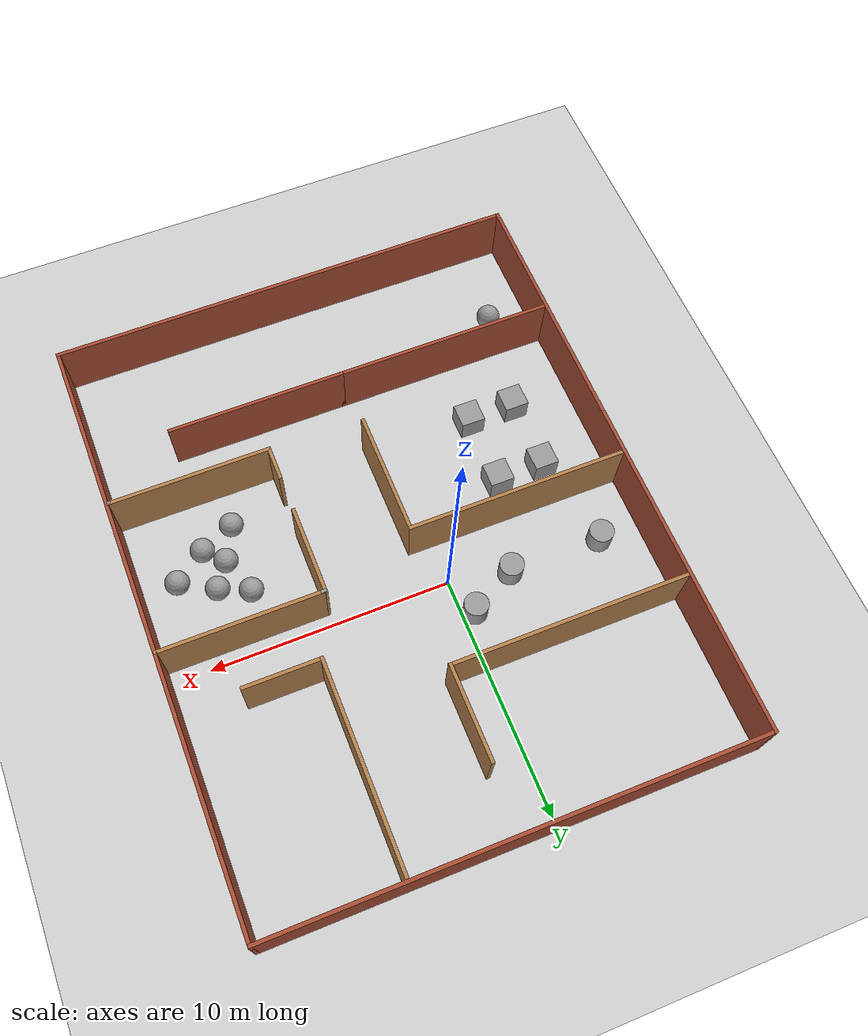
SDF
<sdf version="1.6">
 <world name="default">
  <model name="ground_plane">
   <static>1</static>
   <link name="link">
    <collision name="collision">
     <geometry><plane><normal>0 0 1</normal><size>100 100</size></plane></geometry>
     <surface>
      <contact><collide_bitmask>65535</collide_bitmask></contact>
      <friction><ode><mu>100</mu><mu2>50</mu2></ode></friction>
     </surface>
    </collision>
    <visual name="visual">
     <cast_shadows>0</cast_shadows>
     <geometry><plane><normal>0 0 1</normal><size>100 100</size></plane></geometry>
     <material>
      <script><uri>file://media/materials/scripts/gazebo.material</uri><name>Gazebo/Grey</name></script>
     </material>
    </visual>
   </link>
  </model>
  <model name="James_Condo">
   <pose>1.69249 -2.01582 0 0 -0 0</pose>
   <link name="Wall_0">
    <collision name="Wall_0_Collision">
     <geometry><box><size>25 0.15 2.5</size></box></geometry>
     <pose>0 0 1.25 0 -0 0</pose>
    </collision>
    <visual name="Wall_0_Visual">
     <pose>0 0 1.25 0 -0 0</pose>
     <geometry><box><size>25 0.15 2.5</size></box></geometry>
     <material>
      <script><uri>file://media/materials/scripts/gazebo.material</uri><name>Gazebo/Bricks</name></script>
      <ambient>1 1 1 1</ambient>
     </material>
     <meta><layer>0</layer></meta>
    </visual>
    <pose>-9.925 0 0 0 -0 1.5708</pose>
   </link>
   <link name="Wall_10">
    <collision name="Wall_10_Collision">
     <geometry><box><size>4 0.15 2.5</size></box></geometry>
     <pose>0 0 1.25 0 -0 0</pose>
    </collision>
    <visual name="Wall_10_Visual">
     <pose>0 0 1.25 0 -0 0</pose>
     <geometry><box><size>4 0.15 2.5</size></box></geometry>
     <material>
      <script><uri>file://media/materials/scripts/gazebo.material</uri><name>Gazebo/Wood</name></script>
      <ambient>1 1 1 1</ambient>
     </material>
     <meta><layer>0</layer></meta>
    </visual>
    <pose>-0.051792 7.79137 0 0 -0 1.5708</pose>
   </link>
   <link name="Wall_12">
    <collision name="Wall_12_Collision">
     <geometry><box><size>8.5 0.15 2.5</size></box></geometry>
     <pose>0 0 1.25 0 -0 0</pose>
    </collision>
    <visual name="Wall_12_Visual">
     <pose>0 0 1.25 0 -0 0</pose>
     <geometry><box><size>8.5 0.15 2.5</size></box></geometry>
     <material>
      <script><uri>file://media/materials/scripts/gazebo.material</uri><name>Gazebo/Wood</name></script>
      <ambient>1 1 1 1</ambient>
     </material>
     <meta><layer>0</layer></meta>
    </visual>
    <pose>4.24962 8.09027 0 0 -0 -1.5708</pose>
   </link>
   <link name="Wall_13">
    <collision name="Wall_13_Collision">
     <geometry><box><size>3.25 0.15 2.5</size></box></geometry>
     <pose>0 0 1.25 0 -0 0</pose>
    </collision>
    <visual name="Wall_13_Visual">
     <pose>0 0 1.25 0 -0 0</pose>
     <geometry><box><size>3.25 0.15 2.5</size></box></geometry>
     <material>
      <script><uri>file://media/materials/scripts/gazebo.material</uri><name>Gazebo/Wood</name></script>
      <ambient>1 1 1 1</ambient>
     </material>
     <meta><layer>0</layer></meta>
    </visual>
    <pose>5.79962 3.91527 0 0 -0 0</pose>
   </link>
   <link name="Wall_15">
    <collision name="Wall_15_Collision">
     <geometry><box><size>9.25 0.15 2.5</size></box></geometry>
     <pose>0 0 1.25 0 -0 0</pose>
    </collision>
    <visual name="Wall_15_Visual">
     <pose>0 0 1.25 0 -0 0</pose>
     <geometry><box><size>9.25 0.15 2.5</size></box></geometry>
     <material>
      <script><uri>file://media/materials/scripts/gazebo.material</uri><name>Gazebo/Wood</name></script>
      <ambient>1 1 1 1</ambient>
     </material>
     <meta><layer>0</layer></meta>
    </visual>
    <pose>-5.28144 0.205804 0 0 -0 0</pose>
   </link>
   <link name="Wall_18">
    <collision name="Wall_18_Collision">
     <geometry><box><size>9.25 0.15 2.5</size></box></geometry>
     <pose>0 0 1.25 0 -0 0</pose>
    </collision>
    <visual name="Wall_18_Visual">
     <pose>0 0 1.25 0 -0 0</pose>
     <geometry><box><size>9.25 0.15 2.5</size></box></geometry>
     <material>
      <script><uri>file://media/materials/scripts/gazebo.material</uri><name>Gazebo/Bricks</name></script>
      <ambient>1 1 1 1</ambient>
     </material>
     <meta><layer>0</layer></meta>
    </visual>
    <pose>-5.22874 -7.3006 0 0 -0 0</pose>
   </link>
   <link name="Wall_24">
    <collision name="Wall_24_Collision">
     <geometry><box><size>5.25 0.15 2.5</size></box></geometry>
     <pose>0 0 1.25 0 -0 0</pose>
    </collision>
    <visual name="Wall_24_Visual">
     <pose>0 0 1.25 0 -0 0</pose>
     <geometry><box><size>5.25 0.15 2.5</size></box></geometry>
     <material>
      <script><uri>file://media/materials/scripts/gazebo.material</uri><name>Gazebo/Wood</name></script>
      <ambient>1 1 1 1</ambient>
     </material>
     <meta><layer>0</layer></meta>
    </visual>
    <pose>-0.731434 -2.3442 0 0 -0 -1.5708</pose>
   </link>
   <link name="Wall_26">
    <collision name="Wall_26_Collision">
     <geometry><box><size>7.5 0.15 2.5</size></box></geometry>
     <pose>0 0 1.25 0 -0 0</pose>
    </collision>
    <visual name="Wall_26_Visual">
     <pose>0 0 1.25 0 -0 0</pose>
     <geometry><box><size>7.5 0.15 2.5</size></box></geometry>
     <material>
      <script><uri>file://media/materials/scripts/gazebo.material</uri><name>Gazebo/Bricks</name></script>
      <ambient>1 1 1 1</ambient>
     </material>
     <meta><layer>0</layer></meta>
    </visual>
    <pose>2.99626 -7.3006 0 0 -0 0</pose>
   </link>
   <link name="Wall_28">
    <collision name="Wall_28_Collision">
     <geometry><box><size>6.75 0.15 2.5</size></box></geometry>
     <pose>0 0 1.25 0 -0 0</pose>
    </collision>
    <visual name="Wall_28_Visual">
     <pose>0 0 1.25 0 -0 0</pose>
     <geometry><box><size>6.75 0.15 2.5</size></box></geometry>
     <material>
      <script><uri>file://media/materials/scripts/gazebo.material</uri><name>Gazebo/Wood</name></script>
      <ambient>1 1 1 1</ambient>
     </material>
     <meta><layer>0</layer></meta>
    </visual>
    <pose>6.62043 1.45525 0 0 -0 3.14159</pose>
   </link>
   <link name="Wall_29">
    <collision name="Wall_29_Collision">
     <geometry><box><size>0.25 0.15 2.5</size></box></geometry>
     <pose>0 0 1.25 0 -0 0</pose>
    </collision>
    <visual name="Wall_29_Visual">
     <pose>0 0 1.25 0 -0 0</pose>
     <geometry><box><size>0.25 0.15 2.5</size></box></geometry>
     <material>
      <script><uri>file://media/materials/scripts/gazebo.material</uri><name>Gazebo/Grey</name></script>
      <ambient>1 1 1 1</ambient>
     </material>
     <meta><layer>0</layer></meta>
    </visual>
    <pose>3.27043 1.45525 0 0 -0 3.14159</pose>
   </link>
   <link name="Wall_3">
    <collision name="Wall_3_Collision">
     <geometry><box><size>20 0.15 2.5</size></box></geometry>
     <pose>0 0 1.25 0 -0 0</pose>
    </collision>
    <visual name="Wall_3_Visual">
     <pose>0 0 1.25 0 -0 0</pose>
     <geometry><box><size>20 0.15 2.5</size></box></geometry>
     <material>
      <script><uri>file://media/materials/scripts/gazebo.material</uri><name>Gazebo/Bricks</name></script>
      <ambient>1 1 1 1</ambient>
     </material>
     <meta><layer>0</layer></meta>
    </visual>
    <pose>0 -12.425 0 0 -0 0</pose>
   </link>
   <link name="Wall_30">
    <collision name="Wall_30_Collision">
     <geometry><box><size>3.75 0.15 2.5</size></box></geometry>
     <pose>0 0 1.25 0 -0 0</pose>
    </collision>
    <visual name="Wall_30_Visual">
     <pose>0 0 1.25 0 -0 0</pose>
     <geometry><box><size>3.75 0.15 2.5</size></box></geometry>
     <material>
      <script><uri>file://media/materials/scripts/gazebo.material</uri><name>Gazebo/Wood</name></script>
      <ambient>1 1 1 1</ambient>
     </material>
     <meta><layer>0</layer></meta>
    </visual>
    <pose>3.22043 -0.344748 0 0 -0 -1.5708</pose>
   </link>
   <link name="Wall_32">
    <collision name="Wall_32_Collision">
     <geometry><box><size>1.5 0.15 2.5</size></box></geometry>
     <pose>0 0 1.25 0 -0 0</pose>
    </collision>
    <visual name="Wall_32_Visual">
     <pose>0 0 1.25 0 -0 0</pose>
     <geometry><box><size>1.5 0.15 2.5</size></box></geometry>
     <material>
      <script><uri>file://media/materials/scripts/gazebo.material</uri><name>Gazebo/Wood</name></script>
      <ambient>1 1 1 1</ambient>
     </material>
     <meta><layer>0</layer></meta>
    </visual>
    <pose>3.22858 -4.39072 0 0 -0 -1.5708</pose>
   </link>
   <link name="Wall_33">
    <collision name="Wall_33_Collision">
     <geometry><box><size>6.75 0.15 2.5</size></box></geometry>
     <pose>0 0 1.25 0 -0 0</pose>
    </collision>
    <visual name="Wall_33_Visual">
     <pose>0 0 1.25 0 -0 0</pose>
     <geometry><box><size>6.75 0.15 2.5</size></box></geometry>
     <material>
      <script><uri>file://media/materials/scripts/gazebo.material</uri><name>Gazebo/Wood</name></script>
      <ambient>1 1 1 1</ambient>
     </material>
     <meta><layer>0</layer></meta>
    </visual>
    <pose>6.52858 -5.06572 0 0 -0 0</pose>
   </link>
   <link name="Wall_34">
    <collision name="Wall_34_Collision">
     <geometry><box><size>0.15 0.15 2.5</size></box></geometry>
     <pose>0 0 1.25 0 -0 0</pose>
    </collision>
    <visual name="Wall_34_Visual">
     <pose>0 0 1.25 0 -0 0</pose>
     <geometry><box><size>0.15 0.15 2.5</size></box></geometry>
     <material>
      <script><uri>file://media/materials/scripts/gazebo.material</uri><name>Gazebo/Grey</name></script>
      <ambient>1 1 1 1</ambient>
     </material>
     <meta><layer>0</layer></meta>
    </visual>
    <pose>9.82858 -5.06572 0 0 -0 0</pose>
   </link>
   <link name="Wall_5">
    <collision name="Wall_5_Collision">
     <geometry><box><size>25 0.15 2.5</size></box></geometry>
     <pose>0 0 1.25 0 -0 0</pose>
    </collision>
    <visual name="Wall_5_Visual">
     <pose>0 0 1.25 0 -0 0</pose>
     <geometry><box><size>25 0.15 2.5</size></box></geometry>
     <material>
      <script><uri>file://media/materials/scripts/gazebo.material</uri><name>Gazebo/Bricks</name></script>
      <ambient>1 1 1 1</ambient>
     </material>
     <meta><layer>0</layer></meta>
    </visual>
    <pose>9.925 0 0 0 -0 1.5708</pose>
   </link>
   <link name="Wall_7">
    <collision name="Wall_7_Collision">
     <geometry><box><size>20 0.15 2.5</size></box></geometry>
     <pose>0 0 1.25 0 -0 0</pose>
    </collision>
    <visual name="Wall_7_Visual">
     <pose>0 0 1.25 0 -0 0</pose>
     <geometry><box><size>20 0.15 2.5</size></box></geometry>
     <material>
      <script><uri>file://media/materials/scripts/gazebo.material</uri><name>Gazebo/Bricks</name></script>
      <ambient>1 1 1 1</ambient>
     </material>
     <meta><layer>0</layer></meta>
    </visual>
    <pose>0 12.425 0 0 -0 0</pose>
   </link>
   <link name="Wall_9">
    <collision name="Wall_9_Collision">
     <geometry><box><size>10 0.15 2.5</size></box></geometry>
     <pose>0 0 1.25 0 -0 0</pose>
    </collision>
    <visual name="Wall_9_Visual">
     <pose>0 0 1.25 0 -0 0</pose>
     <geometry><box><size>10 0.15 2.5</size></box></geometry>
     <material>
      <script><uri>file://media/materials/scripts/gazebo.material</uri><name>Gazebo/Wood</name></script>
      <ambient>1 1 1 1</ambient>
     </material>
     <meta><layer>0</layer></meta>
    </visual>
    <pose>-4.97679 5.86637 0 0 -0 0</pose>
   </link>
   <static>1</static>
  </model>
  <model name="usedmap">
   <link name="link_1">
    <inertial>
     <mass>1</mass>
     <inertia>
      <ixx>0.166667</ixx>
      <ixy>0</ixy>
      <ixz>0</ixz>
      <iyy>0.166667</iyy>
      <iyz>0</iyz>
      <izz>0.166667</izz>
     </inertia>
    </inertial>
    <pose>-6.1695 -3.55407 0 0 -0 0</pose>
    <visual name="visual">
     <geometry><box><size>1 1 1</size></box></geometry>
     <material>
      <lighting>1</lighting>
      <script><uri>file://media/materials/scripts/gazebo.material</uri><name>Gazebo/Grey</name></script>
     </material>
    </visual>
    <collision name="collision">
     <geometry><box><size>1 1 1</size></box></geometry>
     <surface>
      <friction>
       <ode><mu>1</mu><mu2>1</mu2><fdir1>0 0 0</fdir1><slip1>0</slip1><slip2>0</slip2></ode>
       <torsional>
        <coefficient>1</coefficient>
        <patch_radius>0</patch_radius>
        <surface_radius>0</surface_radius>
        <use_patch_radius>1</use_patch_radius>
        <ode><slip>0</slip></ode>
       </torsional>
      </friction>
      <bounce><restitution_coefficient>0</restitution_coefficient><threshold>1e+06</threshold></bounce>
      <contact>
       <collide_without_contact>0</collide_without_contact>
       <collide_without_contact_bitmask>1</collide_without_contact_bitmask>
       <collide_bitmask>1</collide_bitmask>
       <ode>
        <soft_cfm>0</soft_cfm>
        <soft_erp>0.2</soft_erp>
        <kp>1e+13</kp>
        <kd>1</kd>
        <max_vel>0.01</max_vel>
        <min_depth>0</min_depth>
       </ode>
       <bullet>
        <split_impulse>1</split_impulse>
        <split_impulse_penetration_threshold>-0.01</split_impulse_penetration_threshold>
        <soft_cfm>0</soft_cfm>
        <soft_erp>0.2</soft_erp>
        <kp>1e+13</kp>
        <kd>1</kd>
       </bullet>
      </contact>
     </surface>
    </collision>
   </link>
   <link name="link_2">
    <inertial>
     <mass>1</mass>
     <inertia>
      <ixx>0.166667</ixx>
      <ixy>0</ixy>
      <ixz>0</ixz>
      <iyy>0.166667</iyy>
      <iyz>0</iyz>
      <izz>0.166667</izz>
     </inertia>
    </inertial>
    <pose>-6.1883 -0.561039 0 0 -0 0</pose>
    <visual name="visual">
     <geometry><box><size>1 1 1</size></box></geometry>
     <material>
      <lighting>1</lighting>
      <script><uri>file://media/materials/scripts/gazebo.material</uri><name>Gazebo/Grey</name></script>
     </material>
    </visual>
    <collision name="collision">
     <geometry><box><size>1 1 1</size></box></geometry>
     <surface>
      <friction>
       <ode><mu>1</mu><mu2>1</mu2><fdir1>0 0 0</fdir1><slip1>0</slip1><slip2>0</slip2></ode>
       <torsional>
        <coefficient>1</coefficient>
        <patch_radius>0</patch_radius>
        <surface_radius>0</surface_radius>
        <use_patch_radius>1</use_patch_radius>
        <ode><slip>0</slip></ode>
       </torsional>
      </friction>
      <bounce><restitution_coefficient>0</restitution_coefficient><threshold>1e+06</threshold></bounce>
      <contact>
       <collide_without_contact>0</collide_without_contact>
       <collide_without_contact_bitmask>1</collide_without_contact_bitmask>
       <collide_bitmask>1</collide_bitmask>
       <ode>
        <soft_cfm>0</soft_cfm>
        <soft_erp>0.2</soft_erp>
        <kp>1e+13</kp>
        <kd>1</kd>
        <max_vel>0.01</max_vel>
        <min_depth>0</min_depth>
       </ode>
       <bullet>
        <split_impulse>1</split_impulse>
        <split_impulse_penetration_threshold>-0.01</split_impulse_penetration_threshold>
        <soft_cfm>0</soft_cfm>
        <soft_erp>0.2</soft_erp>
        <kp>1e+13</kp>
        <kd>1</kd>
       </bullet>
      </contact>
     </surface>
    </collision>
   </link>
   <link name="link_29">
    <inertial>
     <mass>1</mass>
     <inertia><ixx>0.1</ixx><ixy>0</ixy><ixz>0</ixz><iyy>0.1</iyy><iyz>0</iyz><izz>0.1</izz></inertia>
    </inertial>
    <pose>-6.9978 -7.98797 0 0 -0 0</pose>
    <visual name="visual">
     <geometry><sphere><radius>0.5</radius></sphere></geometry>
     <material>
      <lighting>1</lighting>
      <script><uri>file://media/materials/scripts/gazebo.material</uri><name>Gazebo/Grey</name></script>
     </material>
    </visual>
    <collision name="collision">
     <geometry><sphere><radius>0.5</radius></sphere></geometry>
     <surface>
      <friction>
       <ode><mu>1</mu><mu2>1</mu2><fdir1>0 0 0</fdir1><slip1>0</slip1><slip2>0</slip2></ode>
       <torsional>
        <coefficient>1</coefficient>
        <patch_radius>0</patch_radius>
        <surface_radius>0</surface_radius>
        <use_patch_radius>1</use_patch_radius>
        <ode><slip>0</slip></ode>
       </torsional>
      </friction>
      <bounce><restitution_coefficient>0</restitution_coefficient><threshold>1e+06</threshold></bounce>
      <contact>
       <collide_without_contact>0</collide_without_contact>
       <collide_without_contact_bitmask>1</collide_without_contact_bitmask>
       <collide_bitmask>1</collide_bitmask>
       <ode>
        <soft_cfm>0</soft_cfm>
        <soft_erp>0.2</soft_erp>
        <kp>1e+13</kp>
        <kd>1</kd>
        <max_vel>0.01</max_vel>
        <min_depth>0</min_depth>
       </ode>
       <bullet>
        <split_impulse>1</split_impulse>
        <split_impulse_penetration_threshold>-0.01</split_impulse_penetration_threshold>
        <soft_cfm>0</soft_cfm>
        <soft_erp>0.2</soft_erp>
        <kp>1e+13</kp>
        <kd>1</kd>
       </bullet>
      </contact>
     </surface>
    </collision>
   </link>
   <link name="link_3">
    <inertial>
     <mass>1</mass>
     <inertia>
      <ixx>0.166667</ixx>
      <ixy>0</ixy>
      <ixz>0</ixz>
      <iyy>0.166667</iyy>
      <iyz>0</iyz>
      <izz>0.166667</izz>
     </inertia>
    </inertial>
    <pose>-4.16917 -3.52686 0 0 -0 0</pose>
    <visual name="visual">
     <geometry><box><size>1 1 1</size></box></geometry>
     <material>
      <lighting>1</lighting>
      <script><uri>file://media/materials/scripts/gazebo.material</uri><name>Gazebo/Grey</name></script>
     </material>
    </visual>
    <collision name="collision">
     <geometry><box><size>1 1 1</size></box></geometry>
     <surface>
      <friction>
       <ode><mu>1</mu><mu2>1</mu2><fdir1>0 0 0</fdir1><slip1>0</slip1><slip2>0</slip2></ode>
       <torsional>
        <coefficient>1</coefficient>
        <patch_radius>0</patch_radius>
        <surface_radius>0</surface_radius>
        <use_patch_radius>1</use_patch_radius>
        <ode><slip>0</slip></ode>
       </torsional>
      </friction>
      <bounce><restitution_coefficient>0</restitution_coefficient><threshold>1e+06</threshold></bounce>
      <contact>
       <collide_without_contact>0</collide_without_contact>
       <collide_without_contact_bitmask>1</collide_without_contact_bitmask>
       <collide_bitmask>1</collide_bitmask>
       <ode>
        <soft_cfm>0</soft_cfm>
        <soft_erp>0.2</soft_erp>
        <kp>1e+13</kp>
        <kd>1</kd>
        <max_vel>0.01</max_vel>
        <min_depth>0</min_depth>
       </ode>
       <bullet>
        <split_impulse>1</split_impulse>
        <split_impulse_penetration_threshold>-0.01</split_impulse_penetration_threshold>
        <soft_cfm>0</soft_cfm>
        <soft_erp>0.2</soft_erp>
        <kp>1e+13</kp>
        <kd>1</kd>
       </bullet>
      </contact>
     </surface>
    </collision>
   </link>
   <link name="link_4">
    <inertial>
     <mass>1</mass>
     <inertia>
      <ixx>0.166667</ixx>
      <ixy>0</ixy>
      <ixz>0</ixz>
      <iyy>0.166667</iyy>
      <iyz>0</iyz>
      <izz>0.166667</izz>
     </inertia>
    </inertial>
    <pose>-4.18952 -0.532203 0 0 -0 0</pose>
    <visual name="visual">
     <geometry><box><size>1 1 1</size></box></geometry>
     <material>
      <lighting>1</lighting>
      <script><uri>file://media/materials/scripts/gazebo.material</uri><name>Gazebo/Grey</name></script>
     </material>
    </visual>
    <collision name="collision">
     <geometry><box><size>1 1 1</size></box></geometry>
     <surface>
      <friction>
       <ode><mu>1</mu><mu2>1</mu2><fdir1>0 0 0</fdir1><slip1>0</slip1><slip2>0</slip2></ode>
       <torsional>
        <coefficient>1</coefficient>
        <patch_radius>0</patch_radius>
        <surface_radius>0</surface_radius>
        <use_patch_radius>1</use_patch_radius>
        <ode><slip>0</slip></ode>
       </torsional>
      </friction>
      <bounce><restitution_coefficient>0</restitution_coefficient><threshold>1e+06</threshold></bounce>
      <contact>
       <collide_without_contact>0</collide_without_contact>
       <collide_without_contact_bitmask>1</collide_without_contact_bitmask>
       <collide_bitmask>1</collide_bitmask>
       <ode>
        <soft_cfm>0</soft_cfm>
        <soft_erp>0.2</soft_erp>
        <kp>1e+13</kp>
        <kd>1</kd>
        <max_vel>0.01</max_vel>
        <min_depth>0</min_depth>
       </ode>
       <bullet>
        <split_impulse>1</split_impulse>
        <split_impulse_penetration_threshold>-0.01</split_impulse_penetration_threshold>
        <soft_cfm>0</soft_cfm>
        <soft_erp>0.2</soft_erp>
        <kp>1e+13</kp>
        <kd>1</kd>
       </bullet>
      </contact>
     </surface>
    </collision>
   </link>
   <link name="link_50">
    <inertial>
     <mass>1</mass>
     <inertia><ixx>0.145833</ixx><ixy>0</ixy><ixz>0</ixz><iyy>0.145833</iyy><iyz>0</iyz><izz>0.125</izz></inertia>
    </inertial>
    <pose>-1.08712 4.45551 0 0 -0 0</pose>
    <visual name="visual">
     <geometry><cylinder><radius>0.5</radius><length>1</length></cylinder></geometry>
     <material>
      <lighting>1</lighting>
      <script><uri>file://media/materials/scripts/gazebo.material</uri><name>Gazebo/Grey</name></script>
     </material>
    </visual>
    <collision name="collision">
     <geometry><cylinder><radius>0.5</radius><length>1</length></cylinder></geometry>
     <surface>
      <friction>
       <ode><mu>1</mu><mu2>1</mu2><fdir1>0 0 0</fdir1><slip1>0</slip1><slip2>0</slip2></ode>
       <torsional>
        <coefficient>1</coefficient>
        <patch_radius>0</patch_radius>
        <surface_radius>0</surface_radius>
        <use_patch_radius>1</use_patch_radius>
        <ode><slip>0</slip></ode>
       </torsional>
      </friction>
      <bounce><restitution_coefficient>0</restitution_coefficient><threshold>1e+06</threshold></bounce>
      <contact>
       <collide_without_contact>0</collide_without_contact>
       <collide_without_contact_bitmask>1</collide_without_contact_bitmask>
       <collide_bitmask>1</collide_bitmask>
       <ode>
        <soft_cfm>0</soft_cfm>
        <soft_erp>0.2</soft_erp>
        <kp>1e+13</kp>
        <kd>1</kd>
        <max_vel>0.01</max_vel>
        <min_depth>0</min_depth>
       </ode>
       <bullet>
        <split_impulse>1</split_impulse>
        <split_impulse_penetration_threshold>-0.01</split_impulse_penetration_threshold>
        <soft_cfm>0</soft_cfm>
        <soft_erp>0.2</soft_erp>
        <kp>1e+13</kp>
        <kd>1</kd>
       </bullet>
      </contact>
     </surface>
    </collision>
   </link>
   <link name="link_52">
    <inertial>
     <mass>1</mass>
     <inertia><ixx>0.145833</ixx><ixy>0</ixy><ixz>0</ixz><iyy>0.145833</iyy><iyz>0</iyz><izz>0.125</izz></inertia>
    </inertial>
    <pose>-3.05225 3.41975 0 0 -0 0</pose>
    <visual name="visual">
     <geometry><cylinder><radius>0.5</radius><length>1</length></cylinder></geometry>
     <material>
      <lighting>1</lighting>
      <script><uri>file://media/materials/scripts/gazebo.material</uri><name>Gazebo/Grey</name></script>
     </material>
    </visual>
    <collision name="collision">
     <geometry><cylinder><radius>0.5</radius><length>1</length></cylinder></geometry>
     <surface>
      <friction>
       <ode><mu>1</mu><mu2>1</mu2><fdir1>0 0 0</fdir1><slip1>0</slip1><slip2>0</slip2></ode>
       <torsional>
        <coefficient>1</coefficient>
        <patch_radius>0</patch_radius>
        <surface_radius>0</surface_radius>
        <use_patch_radius>1</use_patch_radius>
        <ode><slip>0</slip></ode>
       </torsional>
      </friction>
      <bounce><restitution_coefficient>0</restitution_coefficient><threshold>1e+06</threshold></bounce>
      <contact>
       <collide_without_contact>0</collide_without_contact>
       <collide_without_contact_bitmask>1</collide_without_contact_bitmask>
       <collide_bitmask>1</collide_bitmask>
       <ode>
        <soft_cfm>0</soft_cfm>
        <soft_erp>0.2</soft_erp>
        <kp>1e+13</kp>
        <kd>1</kd>
        <max_vel>0.01</max_vel>
        <min_depth>0</min_depth>
       </ode>
       <bullet>
        <split_impulse>1</split_impulse>
        <split_impulse_penetration_threshold>-0.01</split_impulse_penetration_threshold>
        <soft_cfm>0</soft_cfm>
        <soft_erp>0.2</soft_erp>
        <kp>1e+13</kp>
        <kd>1</kd>
       </bullet>
      </contact>
     </surface>
    </collision>
   </link>
   <link name="link_54">
    <inertial>
     <mass>1</mass>
     <inertia><ixx>0.145833</ixx><ixy>0</ixy><ixz>0</ixz><iyy>0.145833</iyy><iyz>0</iyz><izz>0.125</izz></inertia>
    </inertial>
    <pose>-6.98745 3.41137 0 0 -0 0</pose>
    <visual name="visual">
     <geometry><cylinder><radius>0.5</radius><length>1</length></cylinder></geometry>
     <material>
      <lighting>1</lighting>
      <script><uri>file://media/materials/scripts/gazebo.material</uri><name>Gazebo/Grey</name></script>
     </material>
    </visual>
    <collision name="collision">
     <geometry><cylinder><radius>0.5</radius><length>1</length></cylinder></geometry>
     <surface>
      <friction>
       <ode><mu>1</mu><mu2>1</mu2><fdir1>0 0 0</fdir1><slip1>0</slip1><slip2>0</slip2></ode>
       <torsional>
        <coefficient>1</coefficient>
        <patch_radius>0</patch_radius>
        <surface_radius>0</surface_radius>
        <use_patch_radius>1</use_patch_radius>
        <ode><slip>0</slip></ode>
       </torsional>
      </friction>
      <bounce><restitution_coefficient>0</restitution_coefficient><threshold>1e+06</threshold></bounce>
      <contact>
       <collide_without_contact>0</collide_without_contact>
       <collide_without_contact_bitmask>1</collide_without_contact_bitmask>
       <collide_bitmask>1</collide_bitmask>
       <ode>
        <soft_cfm>0</soft_cfm>
        <soft_erp>0.2</soft_erp>
        <kp>1e+13</kp>
        <kd>1</kd>
        <max_vel>0.01</max_vel>
        <min_depth>0</min_depth>
       </ode>
       <bullet>
        <split_impulse>1</split_impulse>
        <split_impulse_penetration_threshold>-0.01</split_impulse_penetration_threshold>
        <soft_cfm>0</soft_cfm>
        <soft_erp>0.2</soft_erp>
        <kp>1e+13</kp>
        <kd>1</kd>
       </bullet>
      </contact>
     </surface>
    </collision>
   </link>
   <link name="link_55">
    <inertial>
     <mass>1</mass>
     <inertia><ixx>0.1</ixx><ixy>0</ixy><ixz>0</ixz><iyy>0.1</iyy><iyz>0</iyz><izz>0.1</izz></inertia>
    </inertial>
    <pose>6.86226 0.479205 0 0 -0 0</pose>
    <visual name="visual">
     <geometry><sphere><radius>0.5</radius></sphere></geometry>
     <material>
      <lighting>1</lighting>
      <script><uri>file://media/materials/scripts/gazebo.material</uri><name>Gazebo/Grey</name></script>
     </material>
    </visual>
    <collision name="collision">
     <geometry><sphere><radius>0.5</radius></sphere></geometry>
     <surface>
      <friction>
       <ode><mu>1</mu><mu2>1</mu2><fdir1>0 0 0</fdir1><slip1>0</slip1><slip2>0</slip2></ode>
       <torsional>
        <coefficient>1</coefficient>
        <patch_radius>0</patch_radius>
        <surface_radius>0</surface_radius>
        <use_patch_radius>1</use_patch_radius>
        <ode><slip>0</slip></ode>
       </torsional>
      </friction>
      <bounce><restitution_coefficient>0</restitution_coefficient><threshold>1e+06</threshold></bounce>
      <contact>
       <collide_without_contact>0</collide_without_contact>
       <collide_without_contact_bitmask>1</collide_without_contact_bitmask>
       <collide_bitmask>1</collide_bitmask>
       <ode>
        <soft_cfm>0</soft_cfm>
        <soft_erp>0.2</soft_erp>
        <kp>1e+13</kp>
        <kd>1</kd>
        <max_vel>0.01</max_vel>
        <min_depth>0</min_depth>
       </ode>
       <bullet>
        <split_impulse>1</split_impulse>
        <split_impulse_penetration_threshold>-0.01</split_impulse_penetration_threshold>
        <soft_cfm>0</soft_cfm>
        <soft_erp>0.2</soft_erp>
        <kp>1e+13</kp>
        <kd>1</kd>
       </bullet>
      </contact>
     </surface>
    </collision>
   </link>
   <link name="link_56">
    <inertial>
     <mass>1</mass>
     <inertia><ixx>0.1</ixx><ixy>0</ixy><ixz>0</ixz><iyy>0.1</iyy><iyz>0</iyz><izz>0.1</izz></inertia>
    </inertial>
    <pose>8.091 -0.062037 0 0 -0 0</pose>
    <visual name="visual">
     <geometry><sphere><radius>0.5</radius></sphere></geometry>
     <material>
      <lighting>1</lighting>
      <script><uri>file://media/materials/scripts/gazebo.material</uri><name>Gazebo/Grey</name></script>
     </material>
    </visual>
    <collision name="collision">
     <geometry><sphere><radius>0.5</radius></sphere></geometry>
     <surface>
      <friction>
       <ode><mu>1</mu><mu2>1</mu2><fdir1>0 0 0</fdir1><slip1>0</slip1><slip2>0</slip2></ode>
       <torsional>
        <coefficient>1</coefficient>
        <patch_radius>0</patch_radius>
        <surface_radius>0</surface_radius>
        <use_patch_radius>1</use_patch_radius>
        <ode><slip>0</slip></ode>
       </torsional>
      </friction>
      <bounce><restitution_coefficient>0</restitution_coefficient><threshold>1e+06</threshold></bounce>
      <contact>
       <collide_without_contact>0</collide_without_contact>
       <collide_without_contact_bitmask>1</collide_without_contact_bitmask>
       <collide_bitmask>1</collide_bitmask>
       <ode>
        <soft_cfm>0</soft_cfm>
        <soft_erp>0.2</soft_erp>
        <kp>1e+13</kp>
        <kd>1</kd>
        <max_vel>0.01</max_vel>
        <min_depth>0</min_depth>
       </ode>
       <bullet>
        <split_impulse>1</split_impulse>
        <split_impulse_penetration_threshold>-0.01</split_impulse_penetration_threshold>
        <soft_cfm>0</soft_cfm>
        <soft_erp>0.2</soft_erp>
        <kp>1e+13</kp>
        <kd>1</kd>
       </bullet>
      </contact>
     </surface>
    </collision>
   </link>
   <link name="link_57">
    <inertial>
     <mass>1</mass>
     <inertia><ixx>0.1</ixx><ixy>0</ixy><ixz>0</ixz><iyy>0.1</iyy><iyz>0</iyz><izz>0.1</izz></inertia>
    </inertial>
    <pose>9.51007 -0.865396 0 0 -0 0</pose>
    <visual name="visual">
     <geometry><sphere><radius>0.5</radius></sphere></geometry>
     <material>
      <lighting>1</lighting>
      <script><uri>file://media/materials/scripts/gazebo.material</uri><name>Gazebo/Grey</name></script>
     </material>
    </visual>
    <collision name="collision">
     <geometry><sphere><radius>0.5</radius></sphere></geometry>
     <surface>
      <friction>
       <ode><mu>1</mu><mu2>1</mu2><fdir1>0 0 0</fdir1><slip1>0</slip1><slip2>0</slip2></ode>
       <torsional>
        <coefficient>1</coefficient>
        <patch_radius>0</patch_radius>
        <surface_radius>0</surface_radius>
        <use_patch_radius>1</use_patch_radius>
        <ode><slip>0</slip></ode>
       </torsional>
      </friction>
      <bounce><restitution_coefficient>0</restitution_coefficient><threshold>1e+06</threshold></bounce>
      <contact>
       <collide_without_contact>0</collide_without_contact>
       <collide_without_contact_bitmask>1</collide_without_contact_bitmask>
       <collide_bitmask>1</collide_bitmask>
       <ode>
        <soft_cfm>0</soft_cfm>
        <soft_erp>0.2</soft_erp>
        <kp>1e+13</kp>
        <kd>1</kd>
        <max_vel>0.01</max_vel>
        <min_depth>0</min_depth>
       </ode>
       <bullet>
        <split_impulse>1</split_impulse>
        <split_impulse_penetration_threshold>-0.01</split_impulse_penetration_threshold>
        <soft_cfm>0</soft_cfm>
        <soft_erp>0.2</soft_erp>
        <kp>1e+13</kp>
        <kd>1</kd>
       </bullet>
      </contact>
     </surface>
    </collision>
   </link>
   <link name="link_58">
    <inertial>
     <mass>1</mass>
     <inertia><ixx>0.1</ixx><ixy>0</ixy><ixz>0</ixz><iyy>0.1</iyy><iyz>0</iyz><izz>0.1</izz></inertia>
    </inertial>
    <pose>8.15871 -1.84444 0 0 -0 0</pose>
    <visual name="visual">
     <geometry><sphere><radius>0.5</radius></sphere></geometry>
     <material>
      <lighting>1</lighting>
      <script><uri>file://media/materials/scripts/gazebo.material</uri><name>Gazebo/Grey</name></script>
     </material>
    </visual>
    <collision name="collision">
     <geometry><sphere><radius>0.5</radius></sphere></geometry>
     <surface>
      <friction>
       <ode><mu>1</mu><mu2>1</mu2><fdir1>0 0 0</fdir1><slip1>0</slip1><slip2>0</slip2></ode>
       <torsional>
        <coefficient>1</coefficient>
        <patch_radius>0</patch_radius>
        <surface_radius>0</surface_radius>
        <use_patch_radius>1</use_patch_radius>
        <ode><slip>0</slip></ode>
       </torsional>
      </friction>
      <bounce><restitution_coefficient>0</restitution_coefficient><threshold>1e+06</threshold></bounce>
      <contact>
       <collide_without_contact>0</collide_without_contact>
       <collide_without_contact_bitmask>1</collide_without_contact_bitmask>
       <collide_bitmask>1</collide_bitmask>
       <ode>
        <soft_cfm>0</soft_cfm>
        <soft_erp>0.2</soft_erp>
        <kp>1e+13</kp>
        <kd>1</kd>
        <max_vel>0.01</max_vel>
        <min_depth>0</min_depth>
       </ode>
       <bullet>
        <split_impulse>1</split_impulse>
        <split_impulse_penetration_threshold>-0.01</split_impulse_penetration_threshold>
        <soft_cfm>0</soft_cfm>
        <soft_erp>0.2</soft_erp>
        <kp>1e+13</kp>
        <kd>1</kd>
       </bullet>
      </contact>
     </surface>
    </collision>
   </link>
   <link name="link_59">
    <inertial>
     <mass>1</mass>
     <inertia><ixx>0.1</ixx><ixy>0</ixy><ixz>0</ixz><iyy>0.1</iyy><iyz>0</iyz><izz>0.1</izz></inertia>
    </inertial>
    <pose>6.72329 -2.5021 0 0 -0 0</pose>
    <visual name="visual">
     <geometry><sphere><radius>0.5</radius></sphere></geometry>
     <material>
      <lighting>1</lighting>
      <script><uri>file://media/materials/scripts/gazebo.material</uri><name>Gazebo/Grey</name></script>
     </material>
    </visual>
    <collision name="collision">
     <geometry><sphere><radius>0.5</radius></sphere></geometry>
     <surface>
      <friction>
       <ode><mu>1</mu><mu2>1</mu2><fdir1>0 0 0</fdir1><slip1>0</slip1><slip2>0</slip2></ode>
       <torsional>
        <coefficient>1</coefficient>
        <patch_radius>0</patch_radius>
        <surface_radius>0</surface_radius>
        <use_patch_radius>1</use_patch_radius>
        <ode><slip>0</slip></ode>
       </torsional>
      </friction>
      <bounce><restitution_coefficient>0</restitution_coefficient><threshold>1e+06</threshold></bounce>
      <contact>
       <collide_without_contact>0</collide_without_contact>
       <collide_without_contact_bitmask>1</collide_without_contact_bitmask>
       <collide_bitmask>1</collide_bitmask>
       <ode>
        <soft_cfm>0</soft_cfm>
        <soft_erp>0.2</soft_erp>
        <kp>1e+13</kp>
        <kd>1</kd>
        <max_vel>0.01</max_vel>
        <min_depth>0</min_depth>
       </ode>
       <bullet>
        <split_impulse>1</split_impulse>
        <split_impulse_penetration_threshold>-0.01</split_impulse_penetration_threshold>
        <soft_cfm>0</soft_cfm>
        <soft_erp>0.2</soft_erp>
        <kp>1e+13</kp>
        <kd>1</kd>
       </bullet>
      </contact>
     </surface>
    </collision>
   </link>
   <link name="link_60">
    <inertial>
     <mass>1</mass>
     <inertia><ixx>0.1</ixx><ixy>0</ixy><ixz>0</ixz><iyy>0.1</iyy><iyz>0</iyz><izz>0.1</izz></inertia>
    </inertial>
    <pose>7.41588 -1.08502 0 0 -0 0</pose>
    <visual name="visual">
     <geometry><sphere><radius>0.5</radius></sphere></geometry>
     <material>
      <lighting>1</lighting>
      <script><uri>file://media/materials/scripts/gazebo.material</uri><name>Gazebo/Grey</name></script>
     </material>
    </visual>
    <collision name="collision">
     <geometry><sphere><radius>0.5</radius></sphere></geometry>
     <surface>
      <friction>
       <ode><mu>1</mu><mu2>1</mu2><fdir1>0 0 0</fdir1><slip1>0</slip1><slip2>0</slip2></ode>
       <torsional>
        <coefficient>1</coefficient>
        <patch_radius>0</patch_radius>
        <surface_radius>0</surface_radius>
        <use_patch_radius>1</use_patch_radius>
        <ode><slip>0</slip></ode>
       </torsional>
      </friction>
      <bounce><restitution_coefficient>0</restitution_coefficient><threshold>1e+06</threshold></bounce>
      <contact>
       <collide_without_contact>0</collide_without_contact>
       <collide_without_contact_bitmask>1</collide_without_contact_bitmask>
       <collide_bitmask>1</collide_bitmask>
       <ode>
        <soft_cfm>0</soft_cfm>
        <soft_erp>0.2</soft_erp>
        <kp>1e+13</kp>
        <kd>1</kd>
        <max_vel>0.01</max_vel>
        <min_depth>0</min_depth>
       </ode>
       <bullet>
        <split_impulse>1</split_impulse>
        <split_impulse_penetration_threshold>-0.01</split_impulse_penetration_threshold>
        <soft_cfm>0</soft_cfm>
        <soft_erp>0.2</soft_erp>
        <kp>1e+13</kp>
        <kd>1</kd>
       </bullet>
      </contact>
     </surface>
    </collision>
   </link>
   <static>0</static>
   <pose>0.585943 -2.92529 0.5 0 -0 0</pose>
  </model>
 </world>
</sdf>
